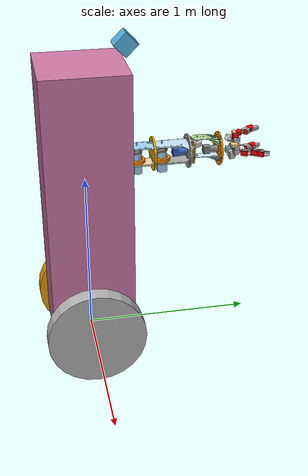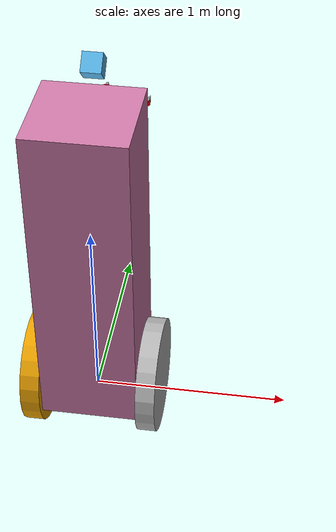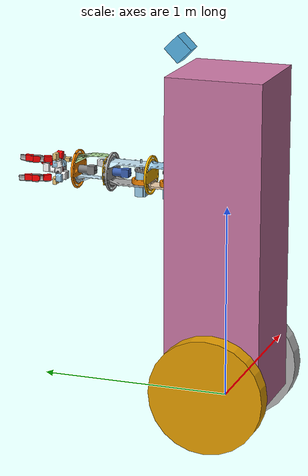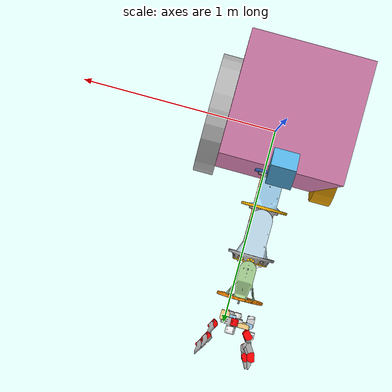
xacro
<?xml version="1.0"?>
<robot xmlns:xacro="http://www.ros.org/wiki/xacro" name="arm_with_pedestal">

    <xacro:property name="arm_name" value="arm1" />
    <xacro:property name="width" value="0.5" />
    <xacro:property name="height" value="1.7" />

    <xacro:include filename="$(find ob1_arm_description)/urdf/ob1_arm.xacro"/>

    <xacro:macro name="pedestal">
        <link name="base_link">
            <visual>
            <origin rpy="0 0 0" xyz="0 0 ${height/2}"/>
            <geometry>
                <box size="${width} ${width} ${height}"/>
            </geometry>
            </visual>

            <collision>
            <origin rpy="0 0 0" xyz="0 0 0.4"/>
            <geometry>
                <box size="${width} ${width} ${height}"/>
            </geometry>
            </collision>
        </link>

        <joint name="base_link_base_joint" type="continuous">
            <origin rpy="${-pi/2} 0 0" xyz="0 ${width/2} ${height*2/3}"/>
            <axis xyz="0 0 1"/>
            <parent link="base_link" />
            <child link="${arm_name}_base_link" />
        </joint>

        <link name="right_wheel">
            <visual>
            <geometry>
                <cylinder length="0.1" radius="0.3"/>
            </geometry>
            <origin rpy="0 ${pi/2} 0" xyz="0.05 0 0"/>
            </visual>
        </link>

        <joint name="base_to_right_wheel" type="continuous">
            <parent link="base_link"/>
            <child link="right_wheel"/>
            <origin xyz="${width/2} 0 0.10"/>
        </joint>

        <link name="left_wheel">
            <visual>
            <geometry>
                <cylinder length="0.1" radius="0.3"/>
            </geometry>
            <origin rpy="0 ${pi/2} 0" xyz="-0.05 0 0"/>
            </visual>
        </link>
        <joint name="base_to_left_wheel" type="continuous">
            <parent link="base_link"/>
            <child link="left_wheel"/>
            <origin xyz="${-width/2} 0 0.10"/>
        </joint>

        <link name="camera_link">
            <visual>
            <origin rpy="${pi/4} 0 0" xyz="0 0 0"/>
            <geometry>
                <box size="0.1 0.1 0.1"/>
            </geometry>
            </visual>
        </link>

        <joint name="base_link_camera_link_joint" type="fixed">
            <origin rpy="0 0 0" xyz="0 ${width/2} ${height+0.1}"/>
            <parent link="base_link" />
            <child link="camera_link" />
        </joint>

        <gazebo>
            <plugin name="gazebo_ros_control" filename="libgazebo_ros_control.so"/>
        </gazebo>

        <!-- camera description adapted from http://gazebosim.org/tutorials?tut=ros_gzplugins#Pluginsavailableingazebo_plugins -->
        <gazebo reference="$camera_link">
            <sensor name="depth_camera" type="depth">
                <update_rate>20</update_rate>
                <camera>
                <horizontal_fov>1.047198</horizontal_fov>
                <image>
                    <width>640</width>
                    <height>480</height>
                    <format>R8G8B8</format>
                </image>
                <clip>
                    <near>0.05</near>
                    <far>3</far>
                </clip>
                </camera>
                <plugin name="$kinetic_camera_controller" filename="libgazebo_ros_openni_kinect.so">
                <baseline>0.2</baseline>
                <alwaysOn>true</alwaysOn>
                <updateRate>1.0</updateRate>
                <cameraName>placeholder_camera_ir</cameraName>
                <imageTopicName>/placeholder_camera/color/image_raw</imageTopicName>
                <cameraInfoTopicName>/placeholder_camera/color/camera_info</cameraInfoTopicName>
                <depthImageTopicName>/placeholder_camera/depth/image_raw</depthImageTopicName>
                <depthImageInfoTopicName>/placeholder_camera/depth/camera_info</depthImageInfoTopicName>
                <pointCloudTopicName>/placeholder_camera/depth/points</pointCloudTopicName>
                <frameName>placeholder_camera_link</frameName>
                <pointCloudCutoff>0.5</pointCloudCutoff>
                <pointCloudCutoffMax>3.0</pointCloudCutoffMax>
                <distortionK1>0.00000001</distortionK1>
                <distortionK2>0.00000001</distortionK2>
                <distortionK3>0.00000001</distortionK3>
                <distortionT1>0.00000001</distortionT1>
                <distortionT2>0.00000001</distortionT2>
                <CxPrime>0</CxPrime>
                <Cx>0</Cx>
                <Cy>0</Cy>
                <focalLength>0</focalLength>
                <hackBaseline>0</hackBaseline>
                </plugin>
            </sensor>
            </gazebo>

    </xacro:macro>

    <xacro:arm arm_name="${arm_name}"/>
    <xacro:pedestal/>
</robot>

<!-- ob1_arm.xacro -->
<robot xmlns:xacro="http://www.ros.org/wiki/xacro" name="ob1_arm">
    <xacro:property name="ob1_arm_z_offset" value="0.06" />
    <xacro:macro name="arm" params="arm_name">
        <link name="${arm_name}_base_link">
            <visual>
                <origin xyz="3.31402e-16 -0.0195 0.06" rpy="-1.5708 1.21431e-16 3.90606e-18" />
                <geometry>
                    <mesh filename="package://ob1_arm_description/meshes/shoulder_y_motor.stl"/>
                </geometry>
                <material name="shoulder_y_motor_material">
                    <color rgba="0.615686 0.811765 0.929412 1.0"/>
                </material>
            </visual>
            <collision>
                <origin xyz="3.31402e-16 -0.0195 0.06" rpy="-1.5708 1.21431e-16 3.90606e-18" />
                <geometry>
                    <mesh filename="package://ob1_arm_description/meshes/shoulder_y_motor.stl"/>
                </geometry>
                <material name="shoulder_y_motor_material">
                    <color rgba="0.615686 0.811765 0.929412 1.0"/>
                </material>
            </collision>
            <visual>
                <origin xyz="1.33481e-16 -0.0195 0.06" rpy="-1.5708 1.2013e-16 2.92997e-21" />
                <geometry>
                    <mesh filename="package://ob1_arm_description/meshes/shoulder_plate.stl"/>
                </geometry>
                <material name="shoulder_plate_material">
                    <color rgba="0.231373 0.380392 0.705882 1.0"/>
                </material>
            </visual>
            <collision>
                <origin xyz="1.33481e-16 -0.0195 0.06" rpy="-1.5708 1.2013e-16 2.92997e-21" />
                <geometry>
                    <mesh filename="package://ob1_arm_description/meshes/shoulder_plate.stl"/>
                </geometry>
                <material name="shoulder_plate_material">
                    <color rgba="0.231373 0.380392 0.705882 1.0"/>
                </material>
            </collision>
            <visual>
                <origin xyz="3.46418e-16 -0.0195 0.06" rpy="-1.5708 1.20997e-16 7.25353e-18" />
                <geometry>
                    <mesh filename="package://ob1_arm_description/meshes/motor_front_support_-_shoulder.stl"/>
                </geometry>
                <material name="motor_front_support_-_shoulder_material">
                    <color rgba="0.498039 0.498039 0.498039 1.0"/>
                </material>
            </visual>
            <collision>
                <origin xyz="3.46418e-16 -0.0195 0.06" rpy="-1.5708 1.20997e-16 7.25353e-18" />
                <geometry>
                    <mesh filename="package://ob1_arm_description/meshes/motor_front_support_-_shoulder.stl"/>
                </geometry>
                <material name="motor_front_support_-_shoulder_material">
                    <color rgba="0.498039 0.498039 0.498039 1.0"/>
                </material>
            </collision>
            <visual>
                <origin xyz="-6.0185e-17 -0.0195 0.06" rpy="-1.5708 1.20997e-16 7.25353e-18" />
                <geometry>
                    <mesh filename="package://ob1_arm_description/meshes/motor_mid_support_-_shoulder.stl"/>
                </geometry>
                <material name="motor_mid_support_-_shoulder_material">
                    <color rgba="0.972549 0.529412 0.00392157 1.0"/>
                </material>
            </visual>
            <collision>
                <origin xyz="-6.0185e-17 -0.0195 0.06" rpy="-1.5708 1.20997e-16 7.25353e-18" />
                <geometry>
                    <mesh filename="package://ob1_arm_description/meshes/motor_mid_support_-_shoulder.stl"/>
                </geometry>
                <material name="motor_mid_support_-_shoulder_material">
                    <color rgba="0.972549 0.529412 0.00392157 1.0"/>
                </material>
            </collision>
            <inertial>
                <origin xyz="0 0 0" rpy="0 0 0"/>
                <mass value="0" />
                <inertia ixx="0" ixy="0"  ixz="0" iyy="0" iyz="0" izz="0" />
            </inertial>
        </link>
        <link name="shoulder_link">
            <visual>
                <origin xyz="0 0 0.067" rpy="3.14159 3.60029e-32 -1.5708" />
                <geometry>
                    <mesh filename="package://ob1_arm_description/meshes/shoulder_linkage_-_motor.stl"/>
                </geometry>
                <material name="shoulder_linkage_-_motor_material">
                    <color rgba="0.921569 0.8 0.654902 1.0"/>
                </material>
            </visual>
            <collision>
                <origin xyz="0 0 0.067" rpy="3.14159 3.60029e-32 -1.5708" />
                <geometry>
                    <mesh filename="package://ob1_arm_description/meshes/shoulder_linkage_-_motor.stl"/>
                </geometry>
                <material name="shoulder_linkage_-_motor_material">
                    <color rgba="0.921569 0.8 0.654902 1.0"/>
                </material>
            </collision>
            <visual>
                <origin xyz="-6.03684e-16 -1.84994e-15 0.067" rpy="3.14159 7.97526e-16 -1.5708" />
                <geometry>
                    <mesh filename="package://ob1_arm_description/meshes/bicep_y_motor.stl"/>
                </geometry>
                <material name="bicep_y_motor_material">
                    <color rgba="0.615686 0.811765 0.929412 1.0"/>
                </material>
            </visual>
            <collision>
                <origin xyz="-6.03684e-16 -1.84994e-15 0.067" rpy="3.14159 7.97526e-16 -1.5708" />
                <geometry>
                    <mesh filename="package://ob1_arm_description/meshes/bicep_y_motor.stl"/>
                </geometry>
                <material name="bicep_y_motor_material">
                    <color rgba="0.615686 0.811765 0.929412 1.0"/>
                </material>
            </collision>
            <visual>
                <origin xyz="-1.31839e-16 -1.36238e-15 0.067" rpy="3.14159 -2.30393e-18 -1.5708" />
                <geometry>
                    <mesh filename="package://ob1_arm_description/meshes/motor_mid_support_-_bicep.stl"/>
                </geometry>
                <material name="motor_mid_support_-_bicep_material">
                    <color rgba="0.972549 0.529412 0.00392157 1.0"/>
                </material>
            </visual>
            <collision>
                <origin xyz="-1.31839e-16 -1.36238e-15 0.067" rpy="3.14159 -2.30393e-18 -1.5708" />
                <geometry>
                    <mesh filename="package://ob1_arm_description/meshes/motor_mid_support_-_bicep.stl"/>
                </geometry>
                <material name="motor_mid_support_-_bicep_material">
                    <color rgba="0.972549 0.529412 0.00392157 1.0"/>
                </material>
            </collision>
            <visual>
                <origin xyz="-7.70217e-16 -1.56706e-15 0.067" rpy="-3.14159 2.79702e-30 -1.5708" />
                <geometry>
                    <mesh filename="package://ob1_arm_description/meshes/bicep_plate_-_real.stl"/>
                </geometry>
                <material name="bicep_plate_-_real_material">
                    <color rgba="0.980392 0.713725 0.00392157 1.0"/>
                </material>
            </visual>
            <collision>
                <origin xyz="-7.70217e-16 -1.56706e-15 0.067" rpy="-3.14159 2.79702e-30 -1.5708" />
                <geometry>
                    <mesh filename="package://ob1_arm_description/meshes/bicep_plate_-_real.stl"/>
                </geometry>
                <material name="bicep_plate_-_real_material">
                    <color rgba="0.980392 0.713725 0.00392157 1.0"/>
                </material>
            </collision>
            <visual>
                <origin xyz="-2.42861e-16 -2.01669e-15 0.067" rpy="3.14159 3.86179e-16 -1.5708" />
                <geometry>
                    <mesh filename="package://ob1_arm_description/meshes/shoulder_linkage_-_encoder.stl"/>
                </geometry>
                <material name="shoulder_linkage_-_encoder_material">
                    <color rgba="0.615686 0.811765 0.929412 1.0"/>
                </material>
            </visual>
            <collision>
                <origin xyz="-2.42861e-16 -2.01669e-15 0.067" rpy="3.14159 3.86179e-16 -1.5708" />
                <geometry>
                    <mesh filename="package://ob1_arm_description/meshes/shoulder_linkage_-_encoder.stl"/>
                </geometry>
                <material name="shoulder_linkage_-_encoder_material">
                    <color rgba="0.615686 0.811765 0.929412 1.0"/>
                </material>
            </collision>
            <visual>
                <origin xyz="-2.70617e-16 -1.98014e-15 0.067" rpy="3.14159 2.23806e-16 -1.5708" />
                <geometry>
                    <mesh filename="package://ob1_arm_description/meshes/motor_front_support_-_bicep.stl"/>
                </geometry>
                <material name="motor_front_support_-_bicep_material">
                    <color rgba="0.498039 0.498039 0.498039 1.0"/>
                </material>
            </visual>
            <collision>
                <origin xyz="-2.70617e-16 -1.98014e-15 0.067" rpy="3.14159 2.23806e-16 -1.5708" />
                <geometry>
                    <mesh filename="package://ob1_arm_description/meshes/motor_front_support_-_bicep.stl"/>
                </geometry>
                <material name="motor_front_support_-_bicep_material">
                    <color rgba="0.498039 0.498039 0.498039 1.0"/>
                </material>
            </collision>
            <inertial>
                <origin xyz="0 0 0" rpy="0 0 0"/>
                <mass value="0" />
                <inertia ixx="0" ixy="0"  ixz="0" iyy="0" iyz="0" izz="0" />
            </inertial>
        </link>
        <link name="arm_link">
            <visual>
                <origin xyz="0.000575841 -1.05471e-15 0.0669915" rpy="3.14159 0.0295346 -7.29078e-16" />
                <geometry>
                    <mesh filename="package://ob1_arm_description/meshes/forearm_z_motor_shaft_collar_-_9604t12_flange-mount_shaft_collar.stl"/>
                </geometry>
                <material name="forearm_z_motor_shaft_collar_-_9604t12_flange-mount_shaft_collar_material">
                    <color rgba="0.498039 0.498039 0.498039 1.0"/>
                </material>
            </visual>
            <collision>
                <origin xyz="0.000575841 -1.05471e-15 0.0669915" rpy="3.14159 0.0295346 -7.29078e-16" />
                <geometry>
                    <mesh filename="package://ob1_arm_description/meshes/forearm_z_motor_shaft_collar_-_9604t12_flange-mount_shaft_collar.stl"/>
                </geometry>
                <material name="forearm_z_motor_shaft_collar_-_9604t12_flange-mount_shaft_collar_material">
                    <color rgba="0.498039 0.498039 0.498039 1.0"/>
                </material>
            </collision>
            <visual>
                <origin xyz="-9.25466e-16 1.55431e-15 0.067" rpy="3.14159 -4.40079e-18 -5.04871e-29" />
                <geometry>
                    <mesh filename="package://ob1_arm_description/meshes/bicep_z_motor.stl"/>
                </geometry>
                <material name="bicep_z_motor_material">
                    <color rgba="0.231373 0.380392 0.705882 1.0"/>
                </material>
            </visual>
            <collision>
                <origin xyz="-9.25466e-16 1.55431e-15 0.067" rpy="3.14159 -4.40079e-18 -5.04871e-29" />
                <geometry>
                    <mesh filename="package://ob1_arm_description/meshes/bicep_z_motor.stl"/>
                </geometry>
                <material name="bicep_z_motor_material">
                    <color rgba="0.231373 0.380392 0.705882 1.0"/>
                </material>
            </collision>
            <visual>
                <origin xyz="-9.99424e-16 -1.66533e-16 0.067" rpy="3.14159 -2.72597e-18 4.33681e-19" />
                <geometry>
                    <mesh filename="package://ob1_arm_description/meshes/bicep_linkage_-_encoder.stl"/>
                </geometry>
                <material name="bicep_linkage_-_encoder_material">
                    <color rgba="0.768627 0.886275 0.952941 1.0"/>
                </material>
            </visual>
            <collision>
                <origin xyz="-9.99424e-16 -1.66533e-16 0.067" rpy="3.14159 -2.72597e-18 4.33681e-19" />
                <geometry>
                    <mesh filename="package://ob1_arm_description/meshes/bicep_linkage_-_encoder.stl"/>
                </geometry>
                <material name="bicep_linkage_-_encoder_material">
                    <color rgba="0.768627 0.886275 0.952941 1.0"/>
                </material>
            </collision>
            <visual>
                <origin xyz="7.88861e-30 2.77556e-17 0.067" rpy="3.14159 4.93271e-31 0" />
                <geometry>
                    <mesh filename="package://ob1_arm_description/meshes/bicep_linkage_-_motor.stl"/>
                </geometry>
                <material name="bicep_linkage_-_motor_material">
                    <color rgba="0.647059 0.647059 0.647059 1.0"/>
                </material>
            </visual>
            <collision>
                <origin xyz="7.88861e-30 2.77556e-17 0.067" rpy="3.14159 4.93271e-31 0" />
                <geometry>
                    <mesh filename="package://ob1_arm_description/meshes/bicep_linkage_-_motor.stl"/>
                </geometry>
                <material name="bicep_linkage_-_motor_material">
                    <color rgba="0.647059 0.647059 0.647059 1.0"/>
                </material>
            </collision>
            <visual>
                <origin xyz="-8.25064e-16 1.05471e-15 0.067" rpy="3.14159 -3.17094e-18 -2.52435e-29" />
                <geometry>
                    <mesh filename="package://ob1_arm_description/meshes/forearm_plate.stl"/>
                </geometry>
                <material name="forearm_plate_material">
                    <color rgba="0.647059 0.647059 0.647059 1.0"/>
                </material>
            </visual>
            <collision>
                <origin xyz="-8.25064e-16 1.05471e-15 0.067" rpy="3.14159 -3.17094e-18 -2.52435e-29" />
                <geometry>
                    <mesh filename="package://ob1_arm_description/meshes/forearm_plate.stl"/>
                </geometry>
                <material name="forearm_plate_material">
                    <color rgba="0.647059 0.647059 0.647059 1.0"/>
                </material>
            </collision>
            <inertial>
                <origin xyz="0 0 0" rpy="0 0 0"/>
                <mass value="0" />
                <inertia ixx="0" ixy="0"  ixz="0" iyy="0" iyz="0" izz="0" />
            </inertial>
        </link>
        <link name="elbow_link">
            <visual>
                <origin xyz="-4.05204e-16 0.0195 0.18" rpy="1.5708 2.52435e-29 -3.46945e-18" />
                <geometry>
                    <mesh filename="package://ob1_arm_description/meshes/forearm_motor_support.stl"/>
                </geometry>
                <material name="forearm_motor_support_material">
                    <color rgba="0.917647 0.917647 0.917647 1.0"/>
                </material>
            </visual>
            <collision>
                <origin xyz="-4.05204e-16 0.0195 0.18" rpy="1.5708 2.52435e-29 -3.46945e-18" />
                <geometry>
                    <mesh filename="package://ob1_arm_description/meshes/forearm_motor_support.stl"/>
                </geometry>
                <material name="forearm_motor_support_material">
                    <color rgba="0.917647 0.917647 0.917647 1.0"/>
                </material>
            </collision>
            <visual>
                <origin xyz="-1.25056e-17 0.0195 0.18" rpy="1.5708 2.52435e-29 3.23731e-28" />
                <geometry>
                    <mesh filename="package://ob1_arm_description/meshes/forearm_intermediate_plate.stl"/>
                </geometry>
                <material name="forearm_intermediate_plate_material">
                    <color rgba="0.980392 0.713725 0.00392157 1.0"/>
                </material>
            </visual>
            <collision>
                <origin xyz="-1.25056e-17 0.0195 0.18" rpy="1.5708 2.52435e-29 3.23731e-28" />
                <geometry>
                    <mesh filename="package://ob1_arm_description/meshes/forearm_intermediate_plate.stl"/>
                </geometry>
                <material name="forearm_intermediate_plate_material">
                    <color rgba="0.980392 0.713725 0.00392157 1.0"/>
                </material>
            </collision>
            <visual>
                <origin xyz="-6.05219e-16 0.05285 -0.03115" rpy="1.5708 2.52435e-29 -6.93889e-18" />
                <geometry>
                    <mesh filename="package://ob1_arm_description/meshes/part_1.stl"/>
                </geometry>
                <material name="part_1_material">
                    <color rgba="0.615686 0.811765 0.929412 1.0"/>
                </material>
            </visual>
            <collision>
                <origin xyz="-6.05219e-16 0.05285 -0.03115" rpy="1.5708 2.52435e-29 -6.93889e-18" />
                <geometry>
                    <mesh filename="package://ob1_arm_description/meshes/part_1.stl"/>
                </geometry>
                <material name="part_1_material">
                    <color rgba="0.615686 0.811765 0.929412 1.0"/>
                </material>
            </collision>
            <inertial>
                <origin xyz="0 0 0" rpy="0 0 0"/>
                <mass value="0" />
                <inertia ixx="0" ixy="0"  ixz="0" iyy="0" iyz="0" izz="0" />
            </inertial>
        </link>
        <link name="forearm_link">
            <visual>
                <origin xyz="-5.02684e-16 0.21115 0.06335" rpy="7.88861e-31 -6.93889e-18 4.33681e-19" />
                <geometry>
                    <mesh filename="package://ob1_arm_description/meshes/end_effector_plate.stl"/>
                </geometry>
                <material name="end_effector_plate_material">
                    <color rgba="0.972549 0.529412 0.00392157 1.0"/>
                </material>
            </visual>
            <collision>
                <origin xyz="-5.02684e-16 0.21115 0.06335" rpy="7.88861e-31 -6.93889e-18 4.33681e-19" />
                <geometry>
                    <mesh filename="package://ob1_arm_description/meshes/end_effector_plate.stl"/>
                </geometry>
                <material name="end_effector_plate_material">
                    <color rgba="0.972549 0.529412 0.00392157 1.0"/>
                </material>
            </collision>
            <visual>
                <origin xyz="-2.79121e-16 0.21115 0.06335" rpy="3.15544e-30 1.08247e-15 3.90313e-18" />
                <geometry>
                    <mesh filename="package://ob1_arm_description/meshes/forearm_linkage_-_encoder.stl"/>
                </geometry>
                <material name="forearm_linkage_-_encoder_material">
                    <color rgba="0.768627 0.886275 0.952941 1.0"/>
                </material>
            </visual>
            <collision>
                <origin xyz="-2.79121e-16 0.21115 0.06335" rpy="3.15544e-30 1.08247e-15 3.90313e-18" />
                <geometry>
                    <mesh filename="package://ob1_arm_description/meshes/forearm_linkage_-_encoder.stl"/>
                </geometry>
                <material name="forearm_linkage_-_encoder_material">
                    <color rgba="0.768627 0.886275 0.952941 1.0"/>
                </material>
            </collision>
            <visual>
                <origin xyz="-1.00221e-17 0.21115 0.06335" rpy="7.88861e-31 -3.46945e-18 2.52435e-29" />
                <geometry>
                    <mesh filename="package://ob1_arm_description/meshes/forearm_linkage_-_motor.stl"/>
                </geometry>
                <material name="forearm_linkage_-_motor_material">
                    <color rgba="0.654902 0.823529 0.576471 1.0"/>
                </material>
            </visual>
            <collision>
                <origin xyz="-1.00221e-17 0.21115 0.06335" rpy="7.88861e-31 -3.46945e-18 2.52435e-29" />
                <geometry>
                    <mesh filename="package://ob1_arm_description/meshes/forearm_linkage_-_motor.stl"/>
                </geometry>
                <material name="forearm_linkage_-_motor_material">
                    <color rgba="0.654902 0.823529 0.576471 1.0"/>
                </material>
            </collision>
            <visual>
                <origin xyz="-5.17754e-16 0.21115 0.06335" rpy="1.57772e-30 1.07553e-15 3.90313e-18" />
                <geometry>
                    <mesh filename="package://ob1_arm_description/meshes/wrist_z_motor.stl"/>
                </geometry>
                <material name="wrist_z_motor_material">
                    <color rgba="0.498039 0.498039 0.498039 1.0"/>
                </material>
            </visual>
            <collision>
                <origin xyz="-5.17754e-16 0.21115 0.06335" rpy="1.57772e-30 1.07553e-15 3.90313e-18" />
                <geometry>
                    <mesh filename="package://ob1_arm_description/meshes/wrist_z_motor.stl"/>
                </geometry>
                <material name="wrist_z_motor_material">
                    <color rgba="0.498039 0.498039 0.498039 1.0"/>
                </material>
            </collision>
            <inertial>
                <origin xyz="0 0 0" rpy="0 0 0"/>
                <mass value="0" />
                <inertia ixx="0" ixy="0"  ixz="0" iyy="0" iyz="0" izz="0" />
            </inertial>
        </link>
        <link name="main_assembly">
            <visual>
                <origin xyz="-0.0645733 -0.0670487 0.129369" rpy="-1.45249 0.81946 0.0866409" />
                <geometry>
                    <mesh filename="package://ob1_arm_description/meshes/part_1.stl"/>
                </geometry>
                <material name="part_1_material">
                    <color rgba="1 0 0 1.0"/>
                </material>
            </visual>
            <collision>
                <origin xyz="-0.0645733 -0.0670487 0.129369" rpy="-1.45249 0.81946 0.0866409" />
                <geometry>
                    <mesh filename="package://ob1_arm_description/meshes/part_1.stl"/>
                </geometry>
                <material name="part_1_material">
                    <color rgba="1 0 0 1.0"/>
                </material>
            </collision>
            <visual>
                <origin xyz="-0.0793646 0.0346641 0.226122" rpy="-1.60498 1.07372 -0.0300488" />
                <geometry>
                    <mesh filename="package://ob1_arm_description/meshes/part_1.stl"/>
                </geometry>
                <material name="part_1_material">
                    <color rgba="1 0 0 1.0"/>
                </material>
            </visual>
            <collision>
                <origin xyz="-0.0793646 0.0346641 0.226122" rpy="-1.60498 1.07372 -0.0300488" />
                <geometry>
                    <mesh filename="package://ob1_arm_description/meshes/part_1.stl"/>
                </geometry>
                <material name="part_1_material">
                    <color rgba="1 0 0 1.0"/>
                </material>
            </collision>
            <visual>
                <origin xyz="-0.0645733 -0.0670487 0.129369" rpy="-1.45249 0.81946 0.0866409" />
                <geometry>
                    <mesh filename="package://ob1_arm_description/meshes/part_2.stl"/>
                </geometry>
                <material name="part_2_material">
                    <color rgba="0.647059 0.647059 0.647059 1.0"/>
                </material>
            </visual>
            <collision>
                <origin xyz="-0.0645733 -0.0670487 0.129369" rpy="-1.45249 0.81946 0.0866409" />
                <geometry>
                    <mesh filename="package://ob1_arm_description/meshes/part_2.stl"/>
                </geometry>
                <material name="part_2_material">
                    <color rgba="0.647059 0.647059 0.647059 1.0"/>
                </material>
            </collision>
            <visual>
                <origin xyz="-0.0185543 0.0183829 0.0681824" rpy="-2.11035e-16 -0.0162981 -1.5708" />
                <geometry>
                    <mesh filename="package://ob1_arm_description/meshes/part_1.stl"/>
                </geometry>
                <material name="part_1_material">
                    <color rgba="1 0 0 1.0"/>
                </material>
            </visual>
            <collision>
                <origin xyz="-0.0185543 0.0183829 0.0681824" rpy="-2.11035e-16 -0.0162981 -1.5708" />
                <geometry>
                    <mesh filename="package://ob1_arm_description/meshes/part_1.stl"/>
                </geometry>
                <material name="part_1_material">
                    <color rgba="1 0 0 1.0"/>
                </material>
            </collision>
            <visual>
                <origin xyz="0.0988562 0.014795 0.216292" rpy="-1.5708 0.989151 -3.14159" />
                <geometry>
                    <mesh filename="package://ob1_arm_description/meshes/part_1.stl"/>
                </geometry>
                <material name="part_1_material">
                    <color rgba="1 0 0 1.0"/>
                </material>
            </visual>
            <collision>
                <origin xyz="0.0988562 0.014795 0.216292" rpy="-1.5708 0.989151 -3.14159" />
                <geometry>
                    <mesh filename="package://ob1_arm_description/meshes/part_1.stl"/>
                </geometry>
                <material name="part_1_material">
                    <color rgba="1 0 0 1.0"/>
                </material>
            </collision>
            <visual>
                <origin xyz="-0.0793646 0.0346641 0.226122" rpy="-1.60498 1.07372 -0.0300488" />
                <geometry>
                    <mesh filename="package://ob1_arm_description/meshes/part_2.stl"/>
                </geometry>
                <material name="part_2_material">
                    <color rgba="0.647059 0.647059 0.647059 1.0"/>
                </material>
            </visual>
            <collision>
                <origin xyz="-0.0793646 0.0346641 0.226122" rpy="-1.60498 1.07372 -0.0300488" />
                <geometry>
                    <mesh filename="package://ob1_arm_description/meshes/part_2.stl"/>
                </geometry>
                <material name="part_2_material">
                    <color rgba="0.647059 0.647059 0.647059 1.0"/>
                </material>
            </collision>
            <visual>
                <origin xyz="-0.0830985 -0.0669066 0.183302" rpy="-1.42635 0.976747 0.119958" />
                <geometry>
                    <mesh filename="package://ob1_arm_description/meshes/part_4.stl"/>
                </geometry>
                <material name="part_4_material">
                    <color rgba="0.647059 0.647059 0.647059 1.0"/>
                </material>
            </visual>
            <collision>
                <origin xyz="-0.0830985 -0.0669066 0.183302" rpy="-1.42635 0.976747 0.119958" />
                <geometry>
                    <mesh filename="package://ob1_arm_description/meshes/part_4.stl"/>
                </geometry>
                <material name="part_4_material">
                    <color rgba="0.647059 0.647059 0.647059 1.0"/>
                </material>
            </collision>
            <visual>
                <origin xyz="-0.0830985 -0.0669066 0.183302" rpy="-1.42635 0.976747 0.119958" />
                <geometry>
                    <mesh filename="package://ob1_arm_description/meshes/part_2.stl"/>
                </geometry>
                <material name="part_2_material">
                    <color rgba="0.647059 0.647059 0.647059 1.0"/>
                </material>
            </visual>
            <collision>
                <origin xyz="-0.0830985 -0.0669066 0.183302" rpy="-1.42635 0.976747 0.119958" />
                <geometry>
                    <mesh filename="package://ob1_arm_description/meshes/part_2.stl"/>
                </geometry>
                <material name="part_2_material">
                    <color rgba="0.647059 0.647059 0.647059 1.0"/>
                </material>
            </collision>
            <visual>
                <origin xyz="0.0086322 0.03835 0.066" rpy="-6.72446e-29 -0.721528 1.5708" />
                <geometry>
                    <mesh filename="package://ob1_arm_description/meshes/535198.stl"/>
                </geometry>
                <material name="535198_material">
                    <color rgba="0.498039 0.498039 0.498039 1.0"/>
                </material>
            </visual>
            <collision>
                <origin xyz="0.0086322 0.03835 0.066" rpy="-6.72446e-29 -0.721528 1.5708" />
                <geometry>
                    <mesh filename="package://ob1_arm_description/meshes/535198.stl"/>
                </geometry>
                <material name="535198_material">
                    <color rgba="0.498039 0.498039 0.498039 1.0"/>
                </material>
            </collision>
            <visual>
                <origin xyz="-0.0830985 -0.0669066 0.183302" rpy="-1.42635 0.976747 0.119958" />
                <geometry>
                    <mesh filename="package://ob1_arm_description/meshes/part_3.stl"/>
                </geometry>
                <material name="part_3_material">
                    <color rgba="0.647059 0.647059 0.647059 1.0"/>
                </material>
            </visual>
            <collision>
                <origin xyz="-0.0830985 -0.0669066 0.183302" rpy="-1.42635 0.976747 0.119958" />
                <geometry>
                    <mesh filename="package://ob1_arm_description/meshes/part_3.stl"/>
                </geometry>
                <material name="part_3_material">
                    <color rgba="0.647059 0.647059 0.647059 1.0"/>
                </material>
            </collision>
            <visual>
                <origin xyz="-0.0185543 0.0183829 0.0681824" rpy="-2.20158e-16 -0.0162981 -1.5708" />
                <geometry>
                    <mesh filename="package://ob1_arm_description/meshes/part_2.stl"/>
                </geometry>
                <material name="part_2_material">
                    <color rgba="0.647059 0.647059 0.647059 1.0"/>
                </material>
            </visual>
            <collision>
                <origin xyz="-0.0185543 0.0183829 0.0681824" rpy="-2.20158e-16 -0.0162981 -1.5708" />
                <geometry>
                    <mesh filename="package://ob1_arm_description/meshes/part_2.stl"/>
                </geometry>
                <material name="part_2_material">
                    <color rgba="0.647059 0.647059 0.647059 1.0"/>
                </material>
            </collision>
            <visual>
                <origin xyz="-0.0374924 -0.01435 0.066" rpy="-3.66048e-16 0.00035012 -1.5708" />
                <geometry>
                    <mesh filename="package://ob1_arm_description/meshes/part_1.stl"/>
                </geometry>
                <material name="part_1_material">
                    <color rgba="0.956863 0.956863 0.956863 1.0"/>
                </material>
            </visual>
            <collision>
                <origin xyz="-0.0374924 -0.01435 0.066" rpy="-3.66048e-16 0.00035012 -1.5708" />
                <geometry>
                    <mesh filename="package://ob1_arm_description/meshes/part_1.stl"/>
                </geometry>
                <material name="part_1_material">
                    <color rgba="0.956863 0.956863 0.956863 1.0"/>
                </material>
            </collision>
            <visual>
                <origin xyz="-0.0830985 -0.0669066 0.183302" rpy="-1.42635 0.976747 0.119958" />
                <geometry>
                    <mesh filename="package://ob1_arm_description/meshes/part_1.stl"/>
                </geometry>
                <material name="part_1_material">
                    <color rgba="1 0 0 1.0"/>
                </material>
            </visual>
            <collision>
                <origin xyz="-0.0830985 -0.0669066 0.183302" rpy="-1.42635 0.976747 0.119958" />
                <geometry>
                    <mesh filename="package://ob1_arm_description/meshes/part_1.stl"/>
                </geometry>
                <material name="part_1_material">
                    <color rgba="1 0 0 1.0"/>
                </material>
            </collision>
            <visual>
                <origin xyz="-0.0652464 -0.01435 0.066" rpy="-3.14159 -0.620674 1.5708" />
                <geometry>
                    <mesh filename="package://ob1_arm_description/meshes/535198.stl"/>
                </geometry>
                <material name="535198_material">
                    <color rgba="0.498039 0.498039 0.498039 1.0"/>
                </material>
            </visual>
            <collision>
                <origin xyz="-0.0652464 -0.01435 0.066" rpy="-3.14159 -0.620674 1.5708" />
                <geometry>
                    <mesh filename="package://ob1_arm_description/meshes/535198.stl"/>
                </geometry>
                <material name="535198_material">
                    <color rgba="0.498039 0.498039 0.498039 1.0"/>
                </material>
            </collision>
            <visual>
                <origin xyz="0.0805058 0.0105131 0.182183" rpy="-1.5708 1.08095 -3.14159" />
                <geometry>
                    <mesh filename="package://ob1_arm_description/meshes/part_3.stl"/>
                </geometry>
                <material name="part_3_material">
                    <color rgba="0.647059 0.647059 0.647059 1.0"/>
                </material>
            </visual>
            <collision>
                <origin xyz="0.0805058 0.0105131 0.182183" rpy="-1.5708 1.08095 -3.14159" />
                <geometry>
                    <mesh filename="package://ob1_arm_description/meshes/part_3.stl"/>
                </geometry>
                <material name="part_3_material">
                    <color rgba="0.647059 0.647059 0.647059 1.0"/>
                </material>
            </collision>
            <visual>
                <origin xyz="0.0693757 0.015 0.124684" rpy="-1.5708 1.03648 -3.14159" />
                <geometry>
                    <mesh filename="package://ob1_arm_description/meshes/part_1.stl"/>
                </geometry>
                <material name="part_1_material">
                    <color rgba="1 0 0 1.0"/>
                </material>
            </visual>
            <collision>
                <origin xyz="0.0693757 0.015 0.124684" rpy="-1.5708 1.03648 -3.14159" />
                <geometry>
                    <mesh filename="package://ob1_arm_description/meshes/part_1.stl"/>
                </geometry>
                <material name="part_1_material">
                    <color rgba="1 0 0 1.0"/>
                </material>
            </collision>
            <visual>
                <origin xyz="-0.0654451 0.0383085 0.186979" rpy="-1.62774 1.28037 -0.0545632" />
                <geometry>
                    <mesh filename="package://ob1_arm_description/meshes/part_4.stl"/>
                </geometry>
                <material name="part_4_material">
                    <color rgba="0.647059 0.647059 0.647059 1.0"/>
                </material>
            </visual>
            <collision>
                <origin xyz="-0.0654451 0.0383085 0.186979" rpy="-1.62774 1.28037 -0.0545632" />
                <geometry>
                    <mesh filename="package://ob1_arm_description/meshes/part_4.stl"/>
                </geometry>
                <material name="part_4_material">
                    <color rgba="0.647059 0.647059 0.647059 1.0"/>
                </material>
            </collision>
            <visual>
                <origin xyz="0.0212271 -0.01435 0.066" rpy="-4.86248e-16 1.1544e-15 -1.5708" />
                <geometry>
                    <mesh filename="package://ob1_arm_description/meshes/part_1.stl"/>
                </geometry>
                <material name="part_1_material">
                    <color rgba="0.752941 0.752941 0.752941 1.0"/>
                </material>
            </visual>
            <collision>
                <origin xyz="0.0212271 -0.01435 0.066" rpy="-4.86248e-16 1.1544e-15 -1.5708" />
                <geometry>
                    <mesh filename="package://ob1_arm_description/meshes/part_1.stl"/>
                </geometry>
                <material name="part_1_material">
                    <color rgba="0.752941 0.752941 0.752941 1.0"/>
                </material>
            </collision>
            <visual>
                <origin xyz="0.0212271 0.01435 0.066" rpy="-4.86248e-16 1.62622e-15 -1.5708" />
                <geometry>
                    <mesh filename="package://ob1_arm_description/meshes/part_1.stl"/>
                </geometry>
                <material name="part_1_material">
                    <color rgba="0.752941 0.752941 0.752941 1.0"/>
                </material>
            </visual>
            <collision>
                <origin xyz="0.0212271 0.01435 0.066" rpy="-4.86248e-16 1.62622e-15 -1.5708" />
                <geometry>
                    <mesh filename="package://ob1_arm_description/meshes/part_1.stl"/>
                </geometry>
                <material name="part_1_material">
                    <color rgba="0.752941 0.752941 0.752941 1.0"/>
                </material>
            </collision>
            <visual>
                <origin xyz="-0.07 -0.017 0.106" rpy="2.86009e-15 -2.08053e-15 1.5708" />
                <geometry>
                    <mesh filename="package://ob1_arm_description/meshes/part_1.stl"/>
                </geometry>
                <material name="part_1_material">
                    <color rgba="1 1 1 1.0"/>
                </material>
            </visual>
            <collision>
                <origin xyz="-0.07 -0.017 0.106" rpy="2.86009e-15 -2.08053e-15 1.5708" />
                <geometry>
                    <mesh filename="package://ob1_arm_description/meshes/part_1.stl"/>
                </geometry>
                <material name="part_1_material">
                    <color rgba="1 1 1 1.0"/>
                </material>
            </collision>
            <visual>
                <origin xyz="-0.0551218 -0.03835 0.066" rpy="-3.14159 1.23853 -1.5708" />
                <geometry>
                    <mesh filename="package://ob1_arm_description/meshes/part_1.stl"/>
                </geometry>
                <material name="part_1_material">
                    <color rgba="0.956863 0.956863 0.956863 1.0"/>
                </material>
            </visual>
            <collision>
                <origin xyz="-0.0551218 -0.03835 0.066" rpy="-3.14159 1.23853 -1.5708" />
                <geometry>
                    <mesh filename="package://ob1_arm_description/meshes/part_1.stl"/>
                </geometry>
                <material name="part_1_material">
                    <color rgba="0.956863 0.956863 0.956863 1.0"/>
                </material>
            </collision>
            <visual>
                <origin xyz="0.00410186 0.01435 0.066" rpy="-2.42292e-15 1.75326e-15 -1.5708" />
                <geometry>
                    <mesh filename="package://ob1_arm_description/meshes/part_1.stl"/>
                </geometry>
                <material name="part_1_material">
                    <color rgba="0.752941 0.752941 0.752941 1.0"/>
                </material>
            </visual>
            <collision>
                <origin xyz="0.00410186 0.01435 0.066" rpy="-2.42292e-15 1.75326e-15 -1.5708" />
                <geometry>
                    <mesh filename="package://ob1_arm_description/meshes/part_1.stl"/>
                </geometry>
                <material name="part_1_material">
                    <color rgba="0.752941 0.752941 0.752941 1.0"/>
                </material>
            </collision>
            <visual>
                <origin xyz="-0.060658 0.0329427 0.133091" rpy="-1.59935 0.963201 -0.0234431" />
                <geometry>
                    <mesh filename="package://ob1_arm_description/meshes/part_1.stl"/>
                </geometry>
                <material name="part_1_material">
                    <color rgba="1 0 0 1.0"/>
                </material>
            </visual>
            <collision>
                <origin xyz="-0.060658 0.0329427 0.133091" rpy="-1.59935 0.963201 -0.0234431" />
                <geometry>
                    <mesh filename="package://ob1_arm_description/meshes/part_1.stl"/>
                </geometry>
                <material name="part_1_material">
                    <color rgba="1 0 0 1.0"/>
                </material>
            </collision>
            <visual>
                <origin xyz="0.0086322 0.01435 0.066" rpy="3.14159 7.25258e-05 -1.5708" />
                <geometry>
                    <mesh filename="package://ob1_arm_description/meshes/535198.stl"/>
                </geometry>
                <material name="535198_material">
                    <color rgba="0.498039 0.498039 0.498039 1.0"/>
                </material>
            </visual>
            <collision>
                <origin xyz="0.0086322 0.01435 0.066" rpy="3.14159 7.25258e-05 -1.5708" />
                <geometry>
                    <mesh filename="package://ob1_arm_description/meshes/535198.stl"/>
                </geometry>
                <material name="535198_material">
                    <color rgba="0.498039 0.498039 0.498039 1.0"/>
                </material>
            </collision>
            <visual>
                <origin xyz="0.0693757 0.015 0.124684" rpy="-1.5708 1.03648 -3.14159" />
                <geometry>
                    <mesh filename="package://ob1_arm_description/meshes/part_2.stl"/>
                </geometry>
                <material name="part_2_material">
                    <color rgba="0.647059 0.647059 0.647059 1.0"/>
                </material>
            </visual>
            <collision>
                <origin xyz="0.0693757 0.015 0.124684" rpy="-1.5708 1.03648 -3.14159" />
                <geometry>
                    <mesh filename="package://ob1_arm_description/meshes/part_2.stl"/>
                </geometry>
                <material name="part_2_material">
                    <color rgba="0.647059 0.647059 0.647059 1.0"/>
                </material>
            </collision>
            <visual>
                <origin xyz="0.00410186 -0.03835 0.066" rpy="-4.89117e-16 -2.04438e-15 -1.5708" />
                <geometry>
                    <mesh filename="package://ob1_arm_description/meshes/part_1.stl"/>
                </geometry>
                <material name="part_1_material">
                    <color rgba="0.752941 0.752941 0.752941 1.0"/>
                </material>
            </visual>
            <collision>
                <origin xyz="0.00410186 -0.03835 0.066" rpy="-4.89117e-16 -2.04438e-15 -1.5708" />
                <geometry>
                    <mesh filename="package://ob1_arm_description/meshes/part_1.stl"/>
                </geometry>
                <material name="part_1_material">
                    <color rgba="0.752941 0.752941 0.752941 1.0"/>
                </material>
            </collision>
            <visual>
                <origin xyz="-0.085 -0.03835 0.066" rpy="-1.5708 -1.5708 0" />
                <geometry>
                    <mesh filename="package://ob1_arm_description/meshes/part_1.stl"/>
                </geometry>
                <material name="part_1_material">
                    <color rgba="0.615686 0.811765 0.929412 1.0"/>
                </material>
            </visual>
            <collision>
                <origin xyz="-0.085 -0.03835 0.066" rpy="-1.5708 -1.5708 0" />
                <geometry>
                    <mesh filename="package://ob1_arm_description/meshes/part_1.stl"/>
                </geometry>
                <material name="part_1_material">
                    <color rgba="0.615686 0.811765 0.929412 1.0"/>
                </material>
            </collision>
            <visual>
                <origin xyz="0.00410186 0.03835 0.066" rpy="-3.14159 -7.80068e-16 1.5708" />
                <geometry>
                    <mesh filename="package://ob1_arm_description/meshes/part_1.stl"/>
                </geometry>
                <material name="part_1_material">
                    <color rgba="0.752941 0.752941 0.752941 1.0"/>
                </material>
            </visual>
            <collision>
                <origin xyz="0.00410186 0.03835 0.066" rpy="-3.14159 -7.80068e-16 1.5708" />
                <geometry>
                    <mesh filename="package://ob1_arm_description/meshes/part_1.stl"/>
                </geometry>
                <material name="part_1_material">
                    <color rgba="0.752941 0.752941 0.752941 1.0"/>
                </material>
            </collision>
            <visual>
                <origin xyz="-0.0350421 -0.0416396 0.0847098" rpy="0.0116274 1.49014 1.5708" />
                <geometry>
                    <mesh filename="package://ob1_arm_description/meshes/hk15328d_v5.stl"/>
                </geometry>
                <material name="hk15328d_v5_material">
                    <color rgba="0.952941 0.796078 0.486275 1.0"/>
                </material>
            </visual>
            <collision>
                <origin xyz="-0.0350421 -0.0416396 0.0847098" rpy="0.0116274 1.49014 1.5708" />
                <geometry>
                    <mesh filename="package://ob1_arm_description/meshes/hk15328d_v5.stl"/>
                </geometry>
                <material name="hk15328d_v5_material">
                    <color rgba="0.952941 0.796078 0.486275 1.0"/>
                </material>
            </collision>
            <visual>
                <origin xyz="0.00410186 -0.01435 0.066" rpy="-4.89117e-16 -1.99653e-15 -1.5708" />
                <geometry>
                    <mesh filename="package://ob1_arm_description/meshes/part_1.stl"/>
                </geometry>
                <material name="part_1_material">
                    <color rgba="0.752941 0.752941 0.752941 1.0"/>
                </material>
            </visual>
            <collision>
                <origin xyz="0.00410186 -0.01435 0.066" rpy="-4.89117e-16 -1.99653e-15 -1.5708" />
                <geometry>
                    <mesh filename="package://ob1_arm_description/meshes/part_1.stl"/>
                </geometry>
                <material name="part_1_material">
                    <color rgba="0.752941 0.752941 0.752941 1.0"/>
                </material>
            </collision>
            <visual>
                <origin xyz="-0.0654451 0.0383085 0.186979" rpy="-1.62774 1.28037 -0.0545632" />
                <geometry>
                    <mesh filename="package://ob1_arm_description/meshes/part_2.stl"/>
                </geometry>
                <material name="part_2_material">
                    <color rgba="0.647059 0.647059 0.647059 1.0"/>
                </material>
            </visual>
            <collision>
                <origin xyz="-0.0654451 0.0383085 0.186979" rpy="-1.62774 1.28037 -0.0545632" />
                <geometry>
                    <mesh filename="package://ob1_arm_description/meshes/part_2.stl"/>
                </geometry>
                <material name="part_2_material">
                    <color rgba="0.647059 0.647059 0.647059 1.0"/>
                </material>
            </collision>
            <visual>
                <origin xyz="-0.0654451 0.0383085 0.186979" rpy="-1.62774 1.28037 -0.0545632" />
                <geometry>
                    <mesh filename="package://ob1_arm_description/meshes/part_3.stl"/>
                </geometry>
                <material name="part_3_material">
                    <color rgba="0.647059 0.647059 0.647059 1.0"/>
                </material>
            </visual>
            <collision>
                <origin xyz="-0.0654451 0.0383085 0.186979" rpy="-1.62774 1.28037 -0.0545632" />
                <geometry>
                    <mesh filename="package://ob1_arm_description/meshes/part_3.stl"/>
                </geometry>
                <material name="part_3_material">
                    <color rgba="0.647059 0.647059 0.647059 1.0"/>
                </material>
            </collision>
            <visual>
                <origin xyz="-0.0951347 -0.073238 0.208485" rpy="-1.28833 1.27756 0.271006" />
                <geometry>
                    <mesh filename="package://ob1_arm_description/meshes/part_2.stl"/>
                </geometry>
                <material name="part_2_material">
                    <color rgba="0.647059 0.647059 0.647059 1.0"/>
                </material>
            </visual>
            <collision>
                <origin xyz="-0.0951347 -0.073238 0.208485" rpy="-1.28833 1.27756 0.271006" />
                <geometry>
                    <mesh filename="package://ob1_arm_description/meshes/part_2.stl"/>
                </geometry>
                <material name="part_2_material">
                    <color rgba="0.647059 0.647059 0.647059 1.0"/>
                </material>
            </collision>
            <visual>
                <origin xyz="-0.060658 0.0329427 0.133091" rpy="-1.59935 0.963201 -0.0234431" />
                <geometry>
                    <mesh filename="package://ob1_arm_description/meshes/part_2.stl"/>
                </geometry>
                <material name="part_2_material">
                    <color rgba="0.647059 0.647059 0.647059 1.0"/>
                </material>
            </visual>
            <collision>
                <origin xyz="-0.060658 0.0329427 0.133091" rpy="-1.59935 0.963201 -0.0234431" />
                <geometry>
                    <mesh filename="package://ob1_arm_description/meshes/part_2.stl"/>
                </geometry>
                <material name="part_2_material">
                    <color rgba="0.647059 0.647059 0.647059 1.0"/>
                </material>
            </collision>
            <visual>
                <origin xyz="0.0213326 -0.0336192 0.0680706" rpy="-1.5708 -0.0114109 1.5708" />
                <geometry>
                    <mesh filename="package://ob1_arm_description/meshes/hk15328d_v5.stl"/>
                </geometry>
                <material name="hk15328d_v5_material">
                    <color rgba="0.952941 0.796078 0.486275 1.0"/>
                </material>
            </visual>
            <collision>
                <origin xyz="0.0213326 -0.0336192 0.0680706" rpy="-1.5708 -0.0114109 1.5708" />
                <geometry>
                    <mesh filename="package://ob1_arm_description/meshes/hk15328d_v5.stl"/>
                </geometry>
                <material name="hk15328d_v5_material">
                    <color rgba="0.952941 0.796078 0.486275 1.0"/>
                </material>
            </collision>
            <visual>
                <origin xyz="0.0086322 -0.01435 0.066" rpy="3.14159 0.00035012 -1.5708" />
                <geometry>
                    <mesh filename="package://ob1_arm_description/meshes/535198.stl"/>
                </geometry>
                <material name="535198_material">
                    <color rgba="0.498039 0.498039 0.498039 1.0"/>
                </material>
            </visual>
            <collision>
                <origin xyz="0.0086322 -0.01435 0.066" rpy="3.14159 0.00035012 -1.5708" />
                <geometry>
                    <mesh filename="package://ob1_arm_description/meshes/535198.stl"/>
                </geometry>
                <material name="535198_material">
                    <color rgba="0.498039 0.498039 0.498039 1.0"/>
                </material>
            </collision>
            <visual>
                <origin xyz="-0.0374924 0.01435 0.066" rpy="-2.30045e-15 7.25258e-05 -1.5708" />
                <geometry>
                    <mesh filename="package://ob1_arm_description/meshes/part_1.stl"/>
                </geometry>
                <material name="part_1_material">
                    <color rgba="0.956863 0.956863 0.956863 1.0"/>
                </material>
            </visual>
            <collision>
                <origin xyz="-0.0374924 0.01435 0.066" rpy="-2.30045e-15 7.25258e-05 -1.5708" />
                <geometry>
                    <mesh filename="package://ob1_arm_description/meshes/part_1.stl"/>
                </geometry>
                <material name="part_1_material">
                    <color rgba="0.956863 0.956863 0.956863 1.0"/>
                </material>
            </collision>
            <visual>
                <origin xyz="-0.0276218 0.03835 0.066" rpy="3.14159 5.5759e-16 1.5708" />
                <geometry>
                    <mesh filename="package://ob1_arm_description/meshes/part_1.stl"/>
                </geometry>
                <material name="part_1_material">
                    <color rgba="0.956863 0.956863 0.956863 1.0"/>
                </material>
            </visual>
            <collision>
                <origin xyz="-0.0276218 0.03835 0.066" rpy="3.14159 5.5759e-16 1.5708" />
                <geometry>
                    <mesh filename="package://ob1_arm_description/meshes/part_1.stl"/>
                </geometry>
                <material name="part_1_material">
                    <color rgba="0.956863 0.956863 0.956863 1.0"/>
                </material>
            </collision>
            <visual>
                <origin xyz="-0.0951347 -0.073238 0.208485" rpy="-1.28833 1.27756 0.271006" />
                <geometry>
                    <mesh filename="package://ob1_arm_description/meshes/part_1.stl"/>
                </geometry>
                <material name="part_1_material">
                    <color rgba="1 0 0 1.0"/>
                </material>
            </visual>
            <collision>
                <origin xyz="-0.0951347 -0.073238 0.208485" rpy="-1.28833 1.27756 0.271006" />
                <geometry>
                    <mesh filename="package://ob1_arm_description/meshes/part_1.stl"/>
                </geometry>
                <material name="part_1_material">
                    <color rgba="1 0 0 1.0"/>
                </material>
            </collision>
            <visual>
                <origin xyz="0.0805058 0.0105131 0.182183" rpy="-1.5708 1.08095 -3.14159" />
                <geometry>
                    <mesh filename="package://ob1_arm_description/meshes/part_2.stl"/>
                </geometry>
                <material name="part_2_material">
                    <color rgba="0.647059 0.647059 0.647059 1.0"/>
                </material>
            </visual>
            <collision>
                <origin xyz="0.0805058 0.0105131 0.182183" rpy="-1.5708 1.08095 -3.14159" />
                <geometry>
                    <mesh filename="package://ob1_arm_description/meshes/part_2.stl"/>
                </geometry>
                <material name="part_2_material">
                    <color rgba="0.647059 0.647059 0.647059 1.0"/>
                </material>
            </collision>
            <visual>
                <origin xyz="3.38813e-21 0 0.108" rpy="7.88861e-31 -2.52435e-29 -7.21484e-28" />
                <geometry>
                    <mesh filename="package://ob1_arm_description/meshes/part_1.stl"/>
                </geometry>
                <material name="part_1_material">
                    <color rgba="1 0.992157 0.992157 1.0"/>
                </material>
            </visual>
            <collision>
                <origin xyz="3.38813e-21 0 0.108" rpy="7.88861e-31 -2.52435e-29 -7.21484e-28" />
                <geometry>
                    <mesh filename="package://ob1_arm_description/meshes/part_1.stl"/>
                </geometry>
                <material name="part_1_material">
                    <color rgba="1 0.992157 0.992157 1.0"/>
                </material>
            </collision>
            <visual>
                <origin xyz="-0.0191893 -0.0584346 0.0662393" rpy="1.01304e-28 0.0806543 -1.5708" />
                <geometry>
                    <mesh filename="package://ob1_arm_description/meshes/part_2.stl"/>
                </geometry>
                <material name="part_2_material">
                    <color rgba="0.647059 0.647059 0.647059 1.0"/>
                </material>
            </visual>
            <collision>
                <origin xyz="-0.0191893 -0.0584346 0.0662393" rpy="1.01304e-28 0.0806543 -1.5708" />
                <geometry>
                    <mesh filename="package://ob1_arm_description/meshes/part_2.stl"/>
                </geometry>
                <material name="part_2_material">
                    <color rgba="0.647059 0.647059 0.647059 1.0"/>
                </material>
            </collision>
            <visual>
                <origin xyz="-0.0345543 0.0406607 0.085048" rpy="1.0245e-13 -1.5545 1.5708" />
                <geometry>
                    <mesh filename="package://ob1_arm_description/meshes/hk15328d_v5.stl"/>
                </geometry>
                <material name="hk15328d_v5_material">
                    <color rgba="0.952941 0.796078 0.486275 1.0"/>
                </material>
            </visual>
            <collision>
                <origin xyz="-0.0345543 0.0406607 0.085048" rpy="1.0245e-13 -1.5545 1.5708" />
                <geometry>
                    <mesh filename="package://ob1_arm_description/meshes/hk15328d_v5.stl"/>
                </geometry>
                <material name="hk15328d_v5_material">
                    <color rgba="0.952941 0.796078 0.486275 1.0"/>
                </material>
            </collision>
            <visual>
                <origin xyz="0.0805058 0.0105131 0.182183" rpy="-1.5708 1.08095 -3.14159" />
                <geometry>
                    <mesh filename="package://ob1_arm_description/meshes/part_4.stl"/>
                </geometry>
                <material name="part_4_material">
                    <color rgba="0.647059 0.647059 0.647059 1.0"/>
                </material>
            </visual>
            <collision>
                <origin xyz="0.0805058 0.0105131 0.182183" rpy="-1.5708 1.08095 -3.14159" />
                <geometry>
                    <mesh filename="package://ob1_arm_description/meshes/part_4.stl"/>
                </geometry>
                <material name="part_4_material">
                    <color rgba="0.647059 0.647059 0.647059 1.0"/>
                </material>
            </collision>
            <visual>
                <origin xyz="0.0086322 -0.03835 0.066" rpy="-5.04871e-29 -2.05143e-15 1.5708" />
                <geometry>
                    <mesh filename="package://ob1_arm_description/meshes/535198.stl"/>
                </geometry>
                <material name="535198_material">
                    <color rgba="0.498039 0.498039 0.498039 1.0"/>
                </material>
            </visual>
            <collision>
                <origin xyz="0.0086322 -0.03835 0.066" rpy="-5.04871e-29 -2.05143e-15 1.5708" />
                <geometry>
                    <mesh filename="package://ob1_arm_description/meshes/535198.stl"/>
                </geometry>
                <material name="535198_material">
                    <color rgba="0.498039 0.498039 0.498039 1.0"/>
                </material>
            </collision>
            <visual>
                <origin xyz="0.0988562 0.014795 0.216292" rpy="-1.5708 0.989151 -3.14159" />
                <geometry>
                    <mesh filename="package://ob1_arm_description/meshes/part_2.stl"/>
                </geometry>
                <material name="part_2_material">
                    <color rgba="0.647059 0.647059 0.647059 1.0"/>
                </material>
            </visual>
            <collision>
                <origin xyz="0.0988562 0.014795 0.216292" rpy="-1.5708 0.989151 -3.14159" />
                <geometry>
                    <mesh filename="package://ob1_arm_description/meshes/part_2.stl"/>
                </geometry>
                <material name="part_2_material">
                    <color rgba="0.647059 0.647059 0.647059 1.0"/>
                </material>
            </collision>
            <visual>
                <origin xyz="-0.0654451 0.0383085 0.186979" rpy="-1.62774 1.28037 -0.0545632" />
                <geometry>
                    <mesh filename="package://ob1_arm_description/meshes/part_1.stl"/>
                </geometry>
                <material name="part_1_material">
                    <color rgba="1 0 0 1.0"/>
                </material>
            </visual>
            <collision>
                <origin xyz="-0.0654451 0.0383085 0.186979" rpy="-1.62774 1.28037 -0.0545632" />
                <geometry>
                    <mesh filename="package://ob1_arm_description/meshes/part_1.stl"/>
                </geometry>
                <material name="part_1_material">
                    <color rgba="1 0 0 1.0"/>
                </material>
            </collision>
            <visual>
                <origin xyz="-0.0652464 0.01435 0.066" rpy="-3.14159 0.0235056 1.5708" />
                <geometry>
                    <mesh filename="package://ob1_arm_description/meshes/535198.stl"/>
                </geometry>
                <material name="535198_material">
                    <color rgba="0.498039 0.498039 0.498039 1.0"/>
                </material>
            </visual>
            <collision>
                <origin xyz="-0.0652464 0.01435 0.066" rpy="-3.14159 0.0235056 1.5708" />
                <geometry>
                    <mesh filename="package://ob1_arm_description/meshes/535198.stl"/>
                </geometry>
                <material name="535198_material">
                    <color rgba="0.498039 0.498039 0.498039 1.0"/>
                </material>
            </collision>
            <visual>
                <origin xyz="-0.0191893 -0.0584346 0.0662393" rpy="1.01304e-28 0.0806543 -1.5708" />
                <geometry>
                    <mesh filename="package://ob1_arm_description/meshes/part_1.stl"/>
                </geometry>
                <material name="part_1_material">
                    <color rgba="1 0 0 1.0"/>
                </material>
            </visual>
            <collision>
                <origin xyz="-0.0191893 -0.0584346 0.0662393" rpy="1.01304e-28 0.0806543 -1.5708" />
                <geometry>
                    <mesh filename="package://ob1_arm_description/meshes/part_1.stl"/>
                </geometry>
                <material name="part_1_material">
                    <color rgba="1 0 0 1.0"/>
                </material>
            </collision>
            <visual>
                <origin xyz="-0.085 0.03835 0.066" rpy="3.14159 -1.59468e-27 1.5708" />
                <geometry>
                    <mesh filename="package://ob1_arm_description/meshes/part_1.stl"/>
                </geometry>
                <material name="part_1_material">
                    <color rgba="0.615686 0.811765 0.929412 1.0"/>
                </material>
            </visual>
            <collision>
                <origin xyz="-0.085 0.03835 0.066" rpy="3.14159 -1.59468e-27 1.5708" />
                <geometry>
                    <mesh filename="package://ob1_arm_description/meshes/part_1.stl"/>
                </geometry>
                <material name="part_1_material">
                    <color rgba="0.615686 0.811765 0.929412 1.0"/>
                </material>
            </collision>
            <visual>
                <origin xyz="0.0194201 -0.0336192 0.0680706" rpy="-1.5708 -1.57014 1.5708" />
                <geometry>
                    <mesh filename="package://ob1_arm_description/meshes/part_1.stl"/>
                </geometry>
                <material name="part_1_material">
                    <color rgba="0.615686 0.811765 0.929412 1.0"/>
                </material>
            </visual>
            <collision>
                <origin xyz="0.0194201 -0.0336192 0.0680706" rpy="-1.5708 -1.57014 1.5708" />
                <geometry>
                    <mesh filename="package://ob1_arm_description/meshes/part_1.stl"/>
                </geometry>
                <material name="part_1_material">
                    <color rgba="0.615686 0.811765 0.929412 1.0"/>
                </material>
            </collision>
            <visual>
                <origin xyz="0.0805058 0.0105131 0.182183" rpy="-1.5708 1.08095 -3.14159" />
                <geometry>
                    <mesh filename="package://ob1_arm_description/meshes/part_1.stl"/>
                </geometry>
                <material name="part_1_material">
                    <color rgba="1 0 0 1.0"/>
                </material>
            </visual>
            <collision>
                <origin xyz="0.0805058 0.0105131 0.182183" rpy="-1.5708 1.08095 -3.14159" />
                <geometry>
                    <mesh filename="package://ob1_arm_description/meshes/part_1.stl"/>
                </geometry>
                <material name="part_1_material">
                    <color rgba="1 0 0 1.0"/>
                </material>
            </collision>
            <inertial>
                <origin xyz="0 0 0" rpy="0 0 0"/>
                <mass value="0" />
                <inertia ixx="0" ixy="0"  ixz="0" iyy="0" iyz="0" izz="0" />
            </inertial>
        </link>
        <joint name="wrist" type="revolute">
            <origin xyz="2.87351e-16 -0.155 0.08285" rpy="1.5708 1.07206e-15 3.90313e-18" />
            <parent link="forearm_link" />
            <child link="main_assembly" />
            <axis xyz="0 0 1"/>
            <limit effort="1" velocity="20" lower="-3.14" upper="3.14"/>
            <joint_properties friction="0.0"/>
        </joint>
        <joint name="elbow_forearm_joint" type="revolute">
            <origin xyz="-5.86137e-16 0.08285 -0.03115" rpy="1.5708 3.24767e-15 -2.19963e-15" />
            <parent link="elbow_link" />
            <child link="forearm_link" />
            <axis xyz="0 0 1"/>
            <limit effort="1" velocity="20" lower="-3.14" upper="3.14"/>
            <joint_properties friction="0.0"/>
        </joint>
        <joint name="arm_elbow_joint" type="revolute">
            <origin xyz="-8.00419e-16 0.18 0.0475" rpy="1.5708 0.0295346 -7.29078e-16" />
            <parent link="arm_link" />
            <child link="elbow_link" />
            <axis xyz="0 0 1"/>
            <limit effort="1" velocity="20" lower="-3.14" upper="3.14"/>
            <joint_properties friction="0.0"/>
        </joint>
        <joint name="shoulder_arm_joint" type="revolute">
            <origin xyz="0.15 -8.58807e-16 7.63278e-17" rpy="-1.21458e-15 -8.20286e-15 -1.5708" />
            <parent link="shoulder_link" />
            <child link="arm_link" />
            <axis xyz="0 0 1"/>
            <limit effort="1" velocity="20" lower="-3.14" upper="3.14"/>
            <joint_properties friction="0.0"/>
        </joint>
        <joint name="base_shoulder_joint" type="revolute">
            <origin xyz="9.08868e-17 0.0465 0.06" rpy="1.5708 -1.5708 0" />
            <parent link="${arm_name}_base_link" />
            <child link="shoulder_link" />
            <axis xyz="0 0 1"/>
            <limit effort="1" velocity="20" lower="-3.14" upper="3.14"/>
            <joint_properties friction="0.0"/>
        </joint>
</xacro:macro>
</robot>
